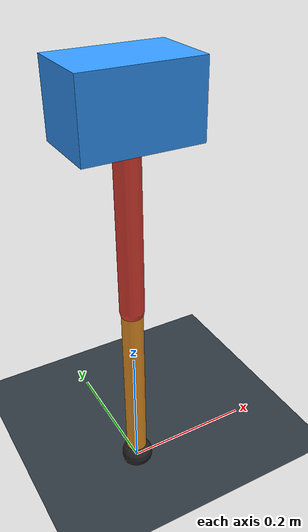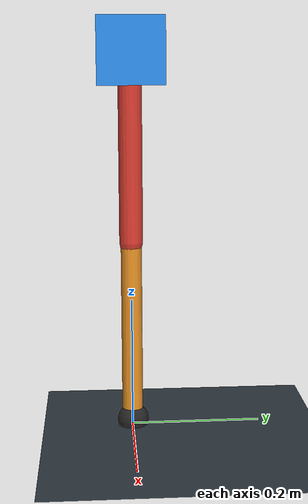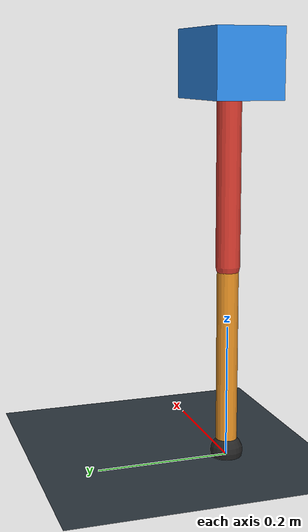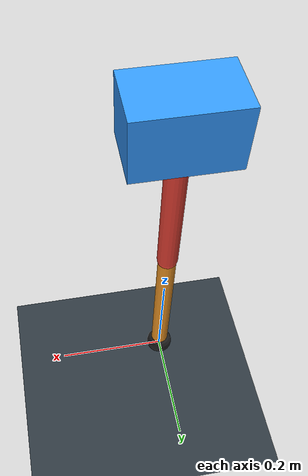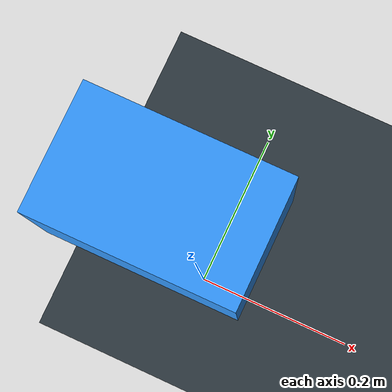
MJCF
<mujoco model="single_axis_two_bar">
  <compiler angle="radian" inertiafromgeom="true"/>
  <option timestep="0.001" integrator="implicitfast" gravity="0 0 -9.81"/>
  <default>
    <joint damping="0.08"/>
    <geom friction="1.2 0.01 0.0001" condim="3"/>
  </default>
  <worldbody>
    <geom name="floor" type="plane" size="5 5 0.1" rgba="0.18 0.22 0.25 1"/>
    <body name="carriage" pos="0 0 0.5864719244914638">
      <joint name="pole_slide" type="slide" axis="0 0 1"/>
      <geom name="payload" type="box" size="0.08 0.05 0.05" mass="2.747980341896442" rgba="0.2 0.6 1 1"/>
      <body name="thigh" pos="0 0 0">
        <joint name="hip" type="hinge" axis="0 1 0"/>
        <geom name="thigh_link" type="capsule" fromto="0 0 0 0 0 -0.29440450087513104" size="0.018" mass="0.20976709708578287" rgba="0.9 0.25 0.2 1"/>
        <body name="shank" pos="0 0 -0.29440450087513104">
          <joint name="knee" type="hinge" axis="0 1 0"/>
          <geom name="shank_link" type="capsule" fromto="0 0 0 0 0 -0.28443253468307905" size="0.016" mass="0.20266193940603827" rgba="0.95 0.6 0.15 1"/>
          <geom name="foot" type="sphere" pos="0 0 -0.28443253468307905" size="0.025" mass="0.03" rgba="0.15 0.15 0.15 1"/>
          <site name="toe" pos="0 0 -0.28443253468307905" size="0.008"/>
        </body>
      </body>
    </body>
  </worldbody>
  <actuator>
    <motor name="hip_motor" joint="hip" ctrlrange="-46.43194811987877 46.43194811987877"/>
    <motor name="knee_motor" joint="knee" ctrlrange="-104.64838952742963 104.64838952742963"/>
  </actuator>
</mujoco>
